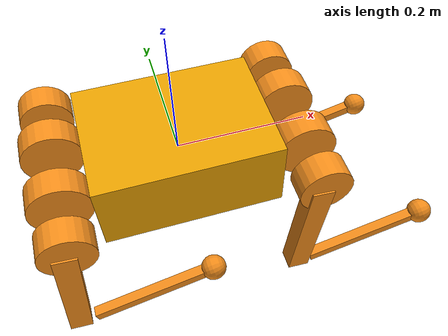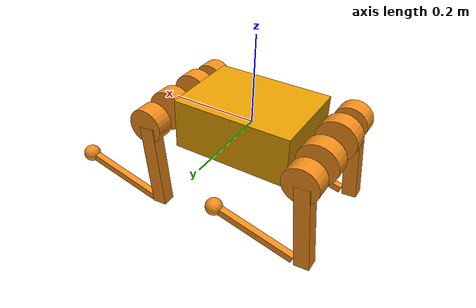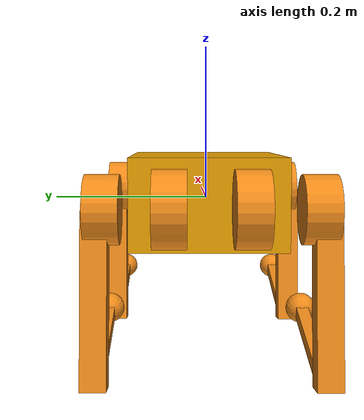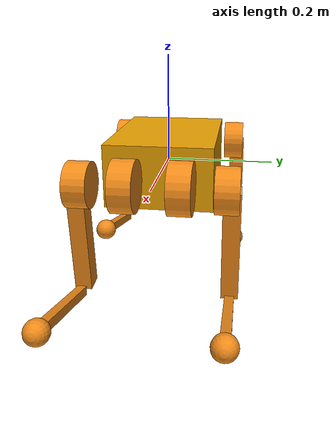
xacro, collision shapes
<?xml version="1.0"?>
<robot xmlns:xacro="http://www.ros.org/wiki/xacro" name="a1">

    <xacro:include filename="$(find legged_a1_description)/urdf/materials.xacro"/>
    <xacro:include filename="$(find legged_a1_description)/urdf/leg.xacro"/>
    <xacro:include filename="$(find legged_a1_description)/urdf/imu.xacro"/>
    <xacro:include filename="$(find legged_a1_description)/urdf/const.xacro"/>

    <xacro:property name="mesh_path" value="$(find legged_a1_description)/meshes/a1"/>

    <!-- Base link -->
    <link name="base">
        <visual>
            <origin rpy="0 0 0" xyz="0 0 0"/>
            <geometry>
                <mesh filename="${mesh_path}/trunk.dae" scale="1 1 1"/>
            </geometry>
        </visual>
        <collision>
            <origin rpy="0 0 0" xyz="0 0 0"/>
            <geometry>
                <box size="${trunk_length} ${trunk_width} ${trunk_height}"/>
            </geometry>
        </collision>
        <inertial>
            <origin rpy="0 0 0" xyz="${trunk_com_x} ${trunk_com_y} ${trunk_com_z}"/>
            <mass value="${trunk_mass}"/>
            <inertia
                    ixx="${trunk_ixx}" ixy="${trunk_ixy}" ixz="${trunk_ixz}"
                    iyy="${trunk_iyy}" iyz="${trunk_iyz}"
                    izz="${trunk_izz}"/>
        </inertial>
    </link>

    <!-- IMU -->
    <xacro:IMU connected_to="base" imu_name="base_imu" xyz="0. 0. 0." rpy="0. 0. 0."/>

    <!-- Legs -->
    <xacro:leg prefix="LF" mesh_path="${mesh_path}" mirror="1" mirror_dae="True" front_hind="1" front_hind_dae="True">
        <origin rpy="0 0 0" xyz="${leg_offset_x} ${leg_offset_y} 0"/>
    </xacro:leg>

    <xacro:leg prefix="LH" mesh_path="${mesh_path}" mirror="1" mirror_dae="True" front_hind="-1" front_hind_dae="False">
        <origin rpy="0 0 0" xyz="${-leg_offset_x} ${leg_offset_y} 0"/>
    </xacro:leg>

    <xacro:leg prefix="RF" mesh_path="${mesh_path}" mirror="-1" mirror_dae="False" front_hind="1" front_hind_dae="True">
        <origin rpy="0 0 0" xyz="${leg_offset_x} ${-leg_offset_y} 0"/>
    </xacro:leg>

    <xacro:leg prefix="RH" mesh_path="${mesh_path}" mirror="-1" mirror_dae="False" front_hind="-1" front_hind_dae="False">
        <origin rpy="0 0 0" xyz="${-leg_offset_x} ${-leg_offset_y} 0"/>
    </xacro:leg>

    <!-- ros2_control hardware interface -->
    <ros2_control name="GazeboSimSystem" type="system">
        <hardware>
            <plugin>gz_ros2_control/GazeboSimSystem</plugin>
        </hardware>

        <xacro:macro name="leg_ros2_control" params="prefix">
            <joint name="${prefix}_HAA">
                <command_interface name="effort">
                    <param name="min">-${hip_torque_max}</param>
                    <param name="max">${hip_torque_max}</param>
                </command_interface>
                <state_interface name="position"/>
                <state_interface name="velocity"/>
                <state_interface name="effort"/>
                <param name="initial_position">-0.20</param>
            </joint>
            <joint name="${prefix}_HFE">
                <command_interface name="effort">
                    <param name="min">-${thigh_torque_max}</param>
                    <param name="max">${thigh_torque_max}</param>
                </command_interface>
                <state_interface name="position"/>
                <state_interface name="velocity"/>
                <state_interface name="effort"/>
                <param name="initial_position">0.72</param>
            </joint>
            <joint name="${prefix}_KFE">
                <command_interface name="effort">
                    <param name="min">-${calf_torque_max}</param>
                    <param name="max">${calf_torque_max}</param>
                </command_interface>
                <state_interface name="position"/>
                <state_interface name="velocity"/>
                <state_interface name="effort"/>
                <param name="initial_position">-1.44</param>
            </joint>
        </xacro:macro>

        <xacro:leg_ros2_control prefix="LF"/>
        <xacro:leg_ros2_control prefix="LH"/>
        <xacro:leg_ros2_control prefix="RF"/>
        <xacro:leg_ros2_control prefix="RH"/>
    </ros2_control>

    <!-- Gazebo ros2_control plugin -->
    <gazebo>
        <plugin filename="gz_ros2_control-system" name="gz_ros2_control::GazeboSimROS2ControlPlugin">
            <parameters>$(find legged_simulation)/config/controllers.yaml</parameters>
        </plugin>
    </gazebo>

    <!-- Gazebo JointPositionController plugins for initial pose -->
    <gazebo>
        <plugin filename="gz-sim-joint-position-controller-system" name="gz::sim::systems::JointPositionController">
            <joint_name>LF_HAA</joint_name>
            <position>-0.20</position>
            <p_gain>100.0</p_gain>
            <i_gain>0.0</i_gain>
            <d_gain>10.0</d_gain>
        </plugin>
        <plugin filename="gz-sim-joint-position-controller-system" name="gz::sim::systems::JointPositionController">
            <joint_name>LF_HFE</joint_name>
            <position>0.72</position>
            <p_gain>100.0</p_gain>
            <i_gain>0.0</i_gain>
            <d_gain>10.0</d_gain>
        </plugin>
        <plugin filename="gz-sim-joint-position-controller-system" name="gz::sim::systems::JointPositionController">
            <joint_name>LF_KFE</joint_name>
            <position>-1.44</position>
            <p_gain>100.0</p_gain>
            <i_gain>0.0</i_gain>
            <d_gain>10.0</d_gain>
        </plugin>
        <plugin filename="gz-sim-joint-position-controller-system" name="gz::sim::systems::JointPositionController">
            <joint_name>LH_HAA</joint_name>
            <position>-0.20</position>
            <p_gain>100.0</p_gain>
            <i_gain>0.0</i_gain>
            <d_gain>10.0</d_gain>
        </plugin>
        <plugin filename="gz-sim-joint-position-controller-system" name="gz::sim::systems::JointPositionController">
            <joint_name>LH_HFE</joint_name>
            <position>0.72</position>
            <p_gain>100.0</p_gain>
            <i_gain>0.0</i_gain>
            <d_gain>10.0</d_gain>
        </plugin>
        <plugin filename="gz-sim-joint-position-controller-system" name="gz::sim::systems::JointPositionController">
            <joint_name>LH_KFE</joint_name>
            <position>-1.44</position>
            <p_gain>100.0</p_gain>
            <i_gain>0.0</i_gain>
            <d_gain>10.0</d_gain>
        </plugin>
        <plugin filename="gz-sim-joint-position-controller-system" name="gz::sim::systems::JointPositionController">
            <joint_name>RF_HAA</joint_name>
            <position>0.20</position>
            <p_gain>100.0</p_gain>
            <i_gain>0.0</i_gain>
            <d_gain>10.0</d_gain>
        </plugin>
        <plugin filename="gz-sim-joint-position-controller-system" name="gz::sim::systems::JointPositionController">
            <joint_name>RF_HFE</joint_name>
            <position>0.72</position>
            <p_gain>100.0</p_gain>
            <i_gain>0.0</i_gain>
            <d_gain>10.0</d_gain>
        </plugin>
        <plugin filename="gz-sim-joint-position-controller-system" name="gz::sim::systems::JointPositionController">
            <joint_name>RF_KFE</joint_name>
            <position>-1.44</position>
            <p_gain>100.0</p_gain>
            <i_gain>0.0</i_gain>
            <d_gain>10.0</d_gain>
        </plugin>
        <plugin filename="gz-sim-joint-position-controller-system" name="gz::sim::systems::JointPositionController">
            <joint_name>RH_HAA</joint_name>
            <position>0.20</position>
            <p_gain>100.0</p_gain>
            <i_gain>0.0</i_gain>
            <d_gain>10.0</d_gain>
        </plugin>
        <plugin filename="gz-sim-joint-position-controller-system" name="gz::sim::systems::JointPositionController">
            <joint_name>RH_HFE</joint_name>
            <position>0.72</position>
            <p_gain>100.0</p_gain>
            <i_gain>0.0</i_gain>
            <d_gain>10.0</d_gain>
        </plugin>
        <plugin filename="gz-sim-joint-position-controller-system" name="gz::sim::systems::JointPositionController">
            <joint_name>RH_KFE</joint_name>
            <position>-1.44</position>
            <p_gain>100.0</p_gain>
            <i_gain>0.0</i_gain>
            <d_gain>10.0</d_gain>
        </plugin>
    </gazebo>

    <!-- Odometry publisher for base state estimation -->
    <gazebo>
        <plugin filename="gz-sim8-odometry-publisher-system" name="gz::sim::systems::OdometryPublisher">
            <odom_frame>odom</odom_frame>
            <robot_base_frame>base</robot_base_frame>
            <odom_topic>/model/a1/odometry</odom_topic>
            <tf_topic>/model/a1/tf</tf_topic>
            <odom_publish_frequency>100</odom_publish_frequency>
        </plugin>
    </gazebo>

    <!-- IMU sensor plugin -->
    <gazebo reference="base_imu">
        <sensor type="imu" name="base_imu">
            <always_on>true</always_on>
            <update_rate>200</update_rate>
            <topic>/imu</topic>
            <imu>
                <angular_velocity>
                    <x><noise type="gaussian"><mean>0</mean><stddev>0.0002</stddev></noise></x>
                    <y><noise type="gaussian"><mean>0</mean><stddev>0.0002</stddev></noise></y>
                    <z><noise type="gaussian"><mean>0</mean><stddev>0.0002</stddev></noise></z>
                </angular_velocity>
                <linear_acceleration>
                    <x><noise type="gaussian"><mean>0</mean><stddev>0.01</stddev></noise></x>
                    <y><noise type="gaussian"><mean>0</mean><stddev>0.01</stddev></noise></y>
                    <z><noise type="gaussian"><mean>0</mean><stddev>0.01</stddev></noise></z>
                </linear_acceleration>
            </imu>
        </sensor>
    </gazebo>

</robot>

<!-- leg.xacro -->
<robot xmlns:xacro="http://www.ros.org/wiki/xacro">

    <xacro:macro name="leg" params="prefix mesh_path mirror mirror_dae front_hind front_hind_dae *origin">

        <joint name="${prefix}_HAA" type="revolute">
            <xacro:insert_block name="origin"/>
            <parent link="base"/>
            <child link="${prefix}_hip"/>
            <axis xyz="1 0 0"/>
            <dynamics damping="${damping}" friction="${friction}"/>
            <xacro:if value="${(mirror_dae == True)}">
                <limit effort="${hip_torque_max}" velocity="${hip_velocity_max}" lower="${hip_position_min}"
                       upper="${hip_position_max}"/>
            </xacro:if>
            <xacro:if value="${(mirror_dae == False)}">
                <limit effort="${hip_torque_max}" velocity="${hip_velocity_max}" lower="${-hip_position_max}"
                       upper="${-hip_position_min}"/>
            </xacro:if>
        </joint>

        <link name="${prefix}_hip">
            <visual>
                <xacro:if value="${(mirror_dae == True) and (front_hind_dae == True)}">
                    <origin rpy="0 0 0" xyz="0 0 0"/>
                </xacro:if>
                <xacro:if value="${(mirror_dae == False) and (front_hind_dae == True)}">
                    <origin rpy="${pi} 0 0" xyz="0 0 0"/>
                </xacro:if>
                <xacro:if value="${(mirror_dae == True) and (front_hind_dae == False)}">
                    <origin rpy="0 ${pi} 0" xyz="0 0 0"/>
                </xacro:if>
                <xacro:if value="${(mirror_dae == False) and (front_hind_dae == False)}">
                    <origin rpy="${pi} ${pi} 0" xyz="0 0 0"/>
                </xacro:if>
                <geometry>
                    <mesh filename="${mesh_path}/hip.dae" scale="1 1 1"/>
                </geometry>
                <material name="orange"/>
            </visual>
            <collision>
                <origin rpy="${pi/2.0} 0 0" xyz="0 0 0"/>
                <geometry>
                    <cylinder length="${hip_length}" radius="${hip_radius}"/>
                </geometry>
            </collision>
            <inertial>
                <origin rpy="0 0 0" xyz="${hip_com_x*front_hind} ${hip_com_y*mirror} ${hip_com_z}"/>
                <mass value="${hip_mass}"/>
                <inertia
                        ixx="${hip_ixx}" ixy="${hip_ixy*mirror*front_hind}" ixz="${hip_ixz*front_hind}"
                        iyy="${hip_iyy}" iyz="${hip_iyz*mirror}"
                        izz="${hip_izz}"/>
            </inertial>
        </link>

        <joint name="${prefix}_HFE" type="revolute">
            <origin rpy="0 0 0" xyz="0 ${thigh_offset*mirror} 0"/>
            <parent link="${prefix}_hip"/>
            <child link="${prefix}_thigh"/>
            <axis xyz="0 1 0"/>
            <dynamics damping="${damping}" friction="${friction}"/>
            <limit effort="${thigh_torque_max}" velocity="${thigh_velocity_max}" lower="${thigh_position_min}"
                   upper="${thigh_position_max}"/>
            <gazebo>
                <initial_position>0.72</initial_position>
            </gazebo>
        </joint>

        <link name="${prefix}_thigh">
            <visual>
                <origin rpy="0 0 0" xyz="0 0 0"/>
                <geometry>
                    <xacro:if value="${mirror_dae == True}">
                        <mesh filename="${mesh_path}/thigh.dae" scale="1 1 1"/>
                    </xacro:if>
                    <xacro:if value="${mirror_dae == False}">
                        <mesh filename="${mesh_path}/thigh_mirror.dae" scale="1 1 1"/>
                    </xacro:if>
                </geometry>
                <material name="orange"/>
            </visual>
            <collision>
                <origin rpy="0 ${pi/2.0+0.1} 0" xyz="${thigh_x_offset} 0 ${-thigh_length/2.0}"/>
                <geometry>
                    <box size="${thigh_length} ${thigh_width} ${thigh_height}"/>
                </geometry>
            </collision>
            <collision>
                <origin rpy="${pi/2.0} 0 0" xyz="0 ${mirror*thigh_shoulder_y_offset} 0"/>
                <geometry>
                    <cylinder length="${thigh_shoulder_length}" radius="${thigh_shoulder_radius}"/>
                </geometry>
            </collision>
            <inertial>
                <origin rpy="0 0 0" xyz="${thigh_com_x} ${thigh_com_y*mirror} ${thigh_com_z}"/>
                <mass value="${thigh_mass}"/>
                <inertia
                        ixx="${thigh_ixx}" ixy="${thigh_ixy*mirror}" ixz="${thigh_ixz}"
                        iyy="${thigh_iyy}" iyz="${thigh_iyz*mirror}"
                        izz="${thigh_izz}"/>
            </inertial>
        </link>

        <joint name="${prefix}_KFE" type="revolute">
            <origin rpy="0 0 0" xyz="0 0 ${-thigh_length}"/>
            <parent link="${prefix}_thigh"/>
            <child link="${prefix}_calf"/>
            <axis xyz="0 1 0"/>
            <dynamics damping="${damping}" friction="${friction}"/>
            <limit effort="${calf_torque_max}" velocity="${calf_velocity_max}" lower="${calf_position_min}" upper="${calf_position_max}"/>
        </joint>

        <link name="${prefix}_calf">
            <visual>
                <origin rpy="0 0 0" xyz="0 0 0"/>
                <geometry>
                    <mesh filename="${mesh_path}/calf.dae" scale="1 1 1"/>
                </geometry>
                <material name="orange"/>
            </visual>
            <collision>
                <origin rpy="0 ${pi/2.0} 0" xyz="${calf_x_offset} 0 ${-calf_length/2.0}"/>
                <geometry>
                    <box size="${calf_length} ${calf_width} ${calf_height}"/>
                </geometry>
            </collision>
            <inertial>
                <origin rpy="0 0 0" xyz="${calf_com_x} ${calf_com_y} ${calf_com_z}"/>
                <mass value="${calf_mass}"/>
                <inertia
                        ixx="${calf_ixx}" ixy="${calf_ixy}" ixz="${calf_ixz}"
                        iyy="${calf_iyy}" iyz="${calf_iyz}"
                        izz="${calf_izz}"/>
            </inertial>
        </link>

        <joint name="${prefix}_foot_fixed" type="fixed" dont_collapse="true">
            <origin rpy="0 0 0" xyz="0 0 ${-(calf_length)}"/>
            <parent link="${prefix}_calf"/>
            <child link="${prefix}_FOOT"/>
        </joint>

        <link name="${prefix}_FOOT">
            <visual>
                <origin rpy="0 0 0" xyz="0 0 0"/>
                <geometry>
                    <sphere radius="${foot_radius-0.01}"/>
                </geometry>
                <material name="orange"/>
            </visual>
            <collision>
                <origin rpy="0 0 0" xyz="0 0 0"/>
                <geometry>
                    <sphere radius="${foot_radius}"/>
                </geometry>
            </collision>
            <inertial>
                <mass value="${foot_mass}"/>
                <inertia
                        ixx="${(2*foot_mass)/5.0*(foot_radius*foot_radius)}" ixy="0.0" ixz="0.0"
                        iyy="${(2*foot_mass)/5.0*(foot_radius*foot_radius)}" iyz="0.0"
                        izz="${(2*foot_mass)/5.0*(foot_radius*foot_radius)}"/>
            </inertial>
        </link>

        <gazebo reference="${prefix}_foot_fixed">
            <disableFixedJointLumping>true</disableFixedJointLumping>
        </gazebo>
        <gazebo reference="${prefix}_hip">
            <mu1>0.2</mu1>
            <mu2>0.2</mu2>
            <material>Gazebo/DarkGrey</material>
        </gazebo>
        <gazebo reference="${prefix}_thigh">
            <mu1>0.2</mu1>
            <mu2>0.2</mu2>
            <self_collide>0</self_collide>
            <material>Gazebo/DarkGrey</material>
            <kp value="1000000.0"/>
            <kd value="100.0"/>
        </gazebo>
        <gazebo reference="${prefix}_calf">
            <mu1>0.6</mu1>
            <mu2>0.6</mu2>
            <self_collide>1</self_collide>
        </gazebo>
        <gazebo reference="${prefix}_FOOT">
            <mu1>0.6</mu1>
            <mu2>0.6</mu2>
            <self_collide>1</self_collide>
            <material>Gazebo/DarkGrey</material>
            <kp value="1000000.0"/>
            <kd value="100.0"/>
        </gazebo>

    </xacro:macro>
</robot>

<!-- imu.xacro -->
<robot xmlns:xacro="http://www.ros.org/wiki/xacro" name="imu">
    <xacro:macro name="IMU" params="connected_to imu_name xyz:='0 0 0' rpy:='0 0 0'">
        <joint name="${imu_name}_joint" type="fixed">
            <origin xyz="${xyz}" rpy="${rpy}"/>
            <parent link="${connected_to}"/>
            <child link="${imu_name}"/>
        </joint>
        <link name="${imu_name}">
            <inertial>
                <mass value="0.01"/>
                <origin rpy="0 0 0" xyz="0 0 0"/>
                <inertia ixx="0.000001" ixy="0" ixz="0" iyy="0.000001" iyz="0" izz="0.000001"/>
            </inertial>
            <visual>
                <origin rpy="0 0 0" xyz="0 0 0"/>
                <geometry>
                    <box size="0.015 0.015 0.004"/>
                </geometry>
            </visual>
        </link>
        <gazebo reference="${imu_name}">
            <material>Gazebo/Orange</material>
        </gazebo>
        <gazebo reference="${imu_name}_joint">
            <disableFixedJointLumping>true</disableFixedJointLumping>
        </gazebo>
    </xacro:macro>
</robot>

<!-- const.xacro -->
<robot xmlns:xacro="http://www.ros.org/wiki/xacro" name="a1_const">

    <!-- simplified collision value -->
    <xacro:property name="trunk_width" value="0.194"/>
    <xacro:property name="trunk_length" value="0.267"/>
    <xacro:property name="trunk_height" value="0.114"/>
    <xacro:property name="hip_radius" value="0.046"/>
    <xacro:property name="hip_length" value="0.04"/>
    <xacro:property name="thigh_shoulder_radius" value="0.04"/>
    <xacro:property name="thigh_shoulder_length" value="0.04"/>
    <xacro:property name="thigh_shoulder_y_offset" value="-0.008"/>
    <xacro:property name="thigh_width" value="0.03"/>
    <xacro:property name="thigh_height" value="0.034"/>
    <xacro:property name="thigh_x_offset" value="-0.015"/>
    <xacro:property name="calf_width" value="0.016"/>
    <xacro:property name="calf_height" value="0.016"/>
    <xacro:property name="calf_x_offset" value="0.0"/>
    <xacro:property name="foot_radius" value="0.02"/>

    <!-- kinematic value -->
    <xacro:property name="thigh_offset" value="0.0838"/>
    <xacro:property name="thigh_length" value="0.2"/>
    <xacro:property name="calf_length" value="0.2"/>

    <!-- leg offset from trunk center -->
    <xacro:property name="leg_offset_x" value="0.1805"/>
    <xacro:property name="leg_offset_y" value="0.047"/>
    <xacro:property name="trunk_offset_z" value="0.01675"/>
    <xacro:property name="hip_offset" value="0.065"/>

    <!-- joint limits -->
    <xacro:property name="damping" value="0"/>
    <xacro:property name="friction" value="0"/>
    <xacro:property name="hip_position_max" value="${46*pi/180.0}"/>
    <xacro:property name="hip_position_min" value="${-46*pi/180.0}"/>
    <xacro:property name="hip_velocity_max" value="21"/>
    <xacro:property name="hip_torque_max" value="33.5"/>
    <xacro:property name="thigh_position_max" value="${240*pi/180.0}"/>
    <xacro:property name="thigh_position_min" value="${-60*pi/180.0}"/>
    <xacro:property name="thigh_velocity_max" value="21"/>
    <xacro:property name="thigh_torque_max" value="33.5"/>
    <xacro:property name="calf_position_max" value="${-52.5*pi/180.0}"/>
    <xacro:property name="calf_position_min" value="${-154.5*pi/180.0}"/>
    <xacro:property name="calf_velocity_max" value="21"/>
    <xacro:property name="calf_torque_max" value="33.5"/>

    <!-- trunk inertia -->
    <xacro:property name="trunk_mass" value="6.0"/>
    <xacro:property name="trunk_com_x" value="0.0000"/>
    <xacro:property name="trunk_com_y" value="0.0041"/>
    <xacro:property name="trunk_com_z" value="-0.0005"/>
    <xacro:property name="trunk_ixx" value="0.0158533"/>
    <xacro:property name="trunk_ixy" value="-0.0000366"/>
    <xacro:property name="trunk_ixz" value="-0.0000611"/>
    <xacro:property name="trunk_iyy" value="0.0377999"/>
    <xacro:property name="trunk_iyz" value="-0.0000275"/>
    <xacro:property name="trunk_izz" value="0.0456542"/>

    <!-- hip (left front) -->
    <xacro:property name="hip_mass" value="0.595"/>
    <xacro:property name="hip_com_x" value="-0.003875"/>
    <xacro:property name="hip_com_y" value="0.001622"/>
    <xacro:property name="hip_com_z" value="0.000042"/>
    <xacro:property name="hip_ixx" value="0.000402747"/>
    <xacro:property name="hip_ixy" value="-0.000008709"/>
    <xacro:property name="hip_ixz" value="-0.000000297"/>
    <xacro:property name="hip_iyy" value="0.000691123"/>
    <xacro:property name="hip_iyz" value="-0.000000545"/>
    <xacro:property name="hip_izz" value="0.000487919"/>

    <!-- thigh -->
    <xacro:property name="thigh_mass" value="0.888"/>
    <xacro:property name="thigh_com_x" value="-0.003574"/>
    <xacro:property name="thigh_com_y" value="-0.019529"/>
    <xacro:property name="thigh_com_z" value="-0.030323"/>
    <xacro:property name="thigh_ixx" value="0.005251806"/>
    <xacro:property name="thigh_ixy" value="-0.000002168"/>
    <xacro:property name="thigh_ixz" value="0.000346889"/>
    <xacro:property name="thigh_iyy" value="0.005000475"/>
    <xacro:property name="thigh_iyz" value="-0.000028174"/>
    <xacro:property name="thigh_izz" value="0.001110200"/>

    <!-- calf -->
    <xacro:property name="calf_mass" value="0.151"/>
    <xacro:property name="calf_com_x" value="0.007105"/>
    <xacro:property name="calf_com_y" value="-0.000239"/>
    <xacro:property name="calf_com_z" value="-0.096933"/>
    <xacro:property name="calf_ixx" value="0.002344758"/>
    <xacro:property name="calf_ixy" value="0.0"/>
    <xacro:property name="calf_ixz" value="-0.000141275"/>
    <xacro:property name="calf_iyy" value="0.002360755"/>
    <xacro:property name="calf_iyz" value="0.0"/>
    <xacro:property name="calf_izz" value="0.000031158"/>

    <!-- foot -->
    <xacro:property name="foot_mass" value="0.06"/>
</robot>
